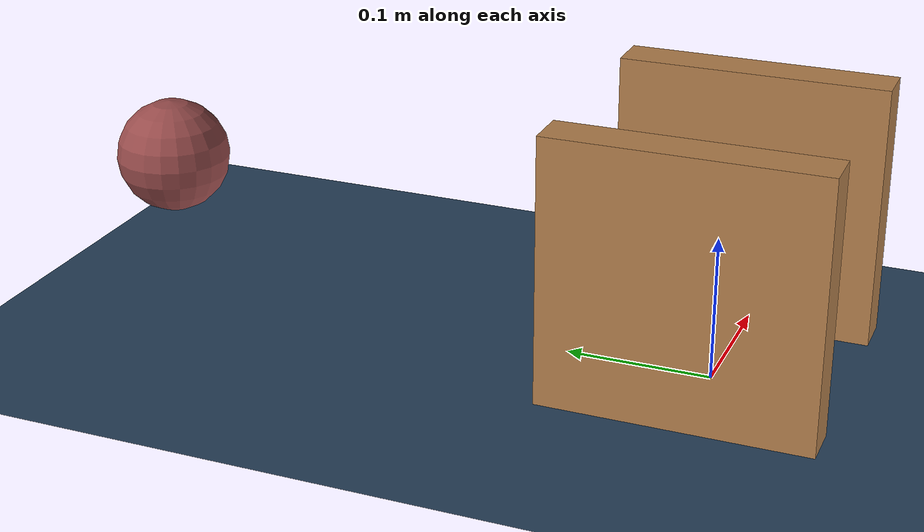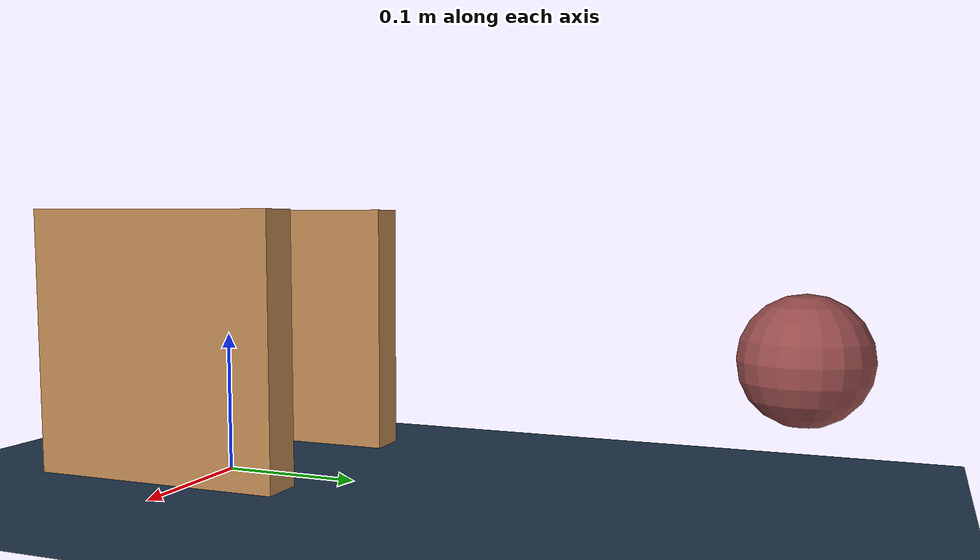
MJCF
<mujoco model="wobble">
	<include file="./common/visual.xml"/>
  <include file="./common/materials.xml"/>
  <asset>
      <texture name="skybox" type="skybox" builtin="gradient" rgb1=".4 .6 .8" rgb2="0 0 0" width="800" height="800" mark="random" markrgb="1 1 1"/>
  </asset>

  <option timestep="0.004" density="5000">
    <flag gravity="disable" constraint="disable"/>
  </option>

  <default>
    <general ctrllimited="true"/>
    <default class="wobble">
      <joint type="hinge" limited="false" range="-90 90" damping="2e-5" solreflimit=".1 1" solimplimit="0 .8 .1"/>
      <geom material="self"/>
    </default>
  </default>

  <worldbody>
    <camera name="tracking_top" pos="0 0 0.45" xyaxes="1 0 0 0 1 0" mode="trackcom"/>
    <camera name="tracking_x" pos="-.3 0 .2" xyaxes="0 -1 0 0.342 0 0.940" fovy="60" mode="trackcom"/>
    <camera name="tracking_y" pos="0 -.3 .2" xyaxes="1 0 0 0 0.342 0.940" fovy="60" mode="trackcom"/>
    <camera name="fixed_top" pos="0 0 5.5" fovy="10"/>
    <geom name="ground" type="plane" size=".5 .5 .1" material="grid"/>
    <geom name="target" type="sphere" pos="0 .4 .1" size=".04" material="target"/>

    <body name="trunk" pos="0 0 0.1" childclass="wobble">
    	<light name="light" diffuse=".6 .6 .6" pos="0 0 0.5" dir="0 0 -1" specular=".3 .3 .3" mode="track"/>
    	<joint name="root" type="free" damping="0" limited="false"/>
    	<site name="trunk" size=".01" rgba="0 0 0 0"/>
    	<geom name="head" type="ellipsoid" pos="0 0 0" size="0.005 0.005 0.005" material="effector"/>
    	<geom name="trunk" type="box" pos="0 0 0" size="0.08 0.015 0.015"/>
    	<camera name="eye" pos="0 0.04 0" xyaxes="1 0 0 0 0 1"/>
    	<body name="lobe_L" pos="0.08 0 0">
    		<joint name="lobe_L_roll" axis="0 1 0"/>
    		<joint name="lobe_L_yaw" axis="0 0 1"/>
    		<geom name="lobe_L" type="box" size="0.015 0.09 0.09"/>
    	</body>
    	<body name="lobe_R" pos="-0.08 0 0">
    		<joint name="lobe_R_roll" axis="0 1 0"/>
    		<joint name="lobe_R_yaw" axis="0 0 1"/>
    		<geom name="lobe_R" type="box" size="0.015 0.09 0.09"/>
    	</body>
    </body>
  </worldbody>

  <actuator>
  	<position name="lobe_L_roll" joint="lobe_L_roll" ctrlrange="-1 1" kp="5e-4"/>
		<position name="lobe_L_yaw" joint="lobe_L_yaw" ctrlrange="-1 1" kp="5e-4"/>
  	<position name="lobe_R_roll" joint="lobe_R_roll" ctrlrange="-1 1" kp="5e-4"/>
  	<position name="lobe_R_yaw" joint="lobe_R_yaw" ctrlrange="-1 1" kp="5e-4"/>
  </actuator>

  <sensor>
  	<velocimeter name="velocimeter" site="trunk"/>
  	<gyro name="gyro" site="trunk"/>
  </sensor>
</mujoco>

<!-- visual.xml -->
<mujoco>
    <visual>
        <headlight ambient=".4 .4 .4" diffuse=".8 .8 .8" specular="0.1 0.1 0.1"/>
        <map znear=".01"/>
        <quality shadowsize="2048"/>
    </visual>
</mujoco>

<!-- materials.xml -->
<!--
Common textures, colors and materials to be used throughout this suite. Some
materials such as xxx_highlight are activated on occurence of certain events,
for example receiving a positive reward.
-->
<mujoco>
  <asset>
    <texture name="grid" type="2d" builtin="checker" rgb1=".1 .2 .3" rgb2=".2 .3 .4" width="300" height="300" mark="edge" markrgb=".2 .3 .4"/>
    <texture name="elon" type="2d" file="elonne.png"/>
    <texture name="corn" type="2d" file="Corn12.png" width="500" height="375"/>
    <material name="corn" texture="corn" texrepeat="1 1" texuniform="true"/>
    <material name="elon" texture="elon" texrepeat="1 1" texuniform="true"/>
    <material name="grid" texture="grid" texrepeat="1 1" texuniform="true" reflectance=".2"/>
    <material name="self" rgba=".7 .5 .3 1"/>
    <material name="self_default" rgba=".7 .5 .3 1"/>
    <material name="self_highlight" rgba="0 .5 .3 1"/>
    <material name="effector" rgba=".7 .4 .2 1"/>
    <material name="effector_default" rgba=".7 .4 .2 1"/>
    <material name="effector_highlight" rgba="0 .5 .3 1"/>
    <material name="decoration" rgba=".3 .5 .7 1"/>
    <material name="eye" rgba="0 .2 1 1"/>
    <material name="target" rgba=".6 .3 .3 1"/>
    <material name="target_default" rgba=".6 .3 .3 1"/>
    <material name="target_highlight" rgba=".6 .3 .3 .4"/>
  </asset>
</mujoco>
